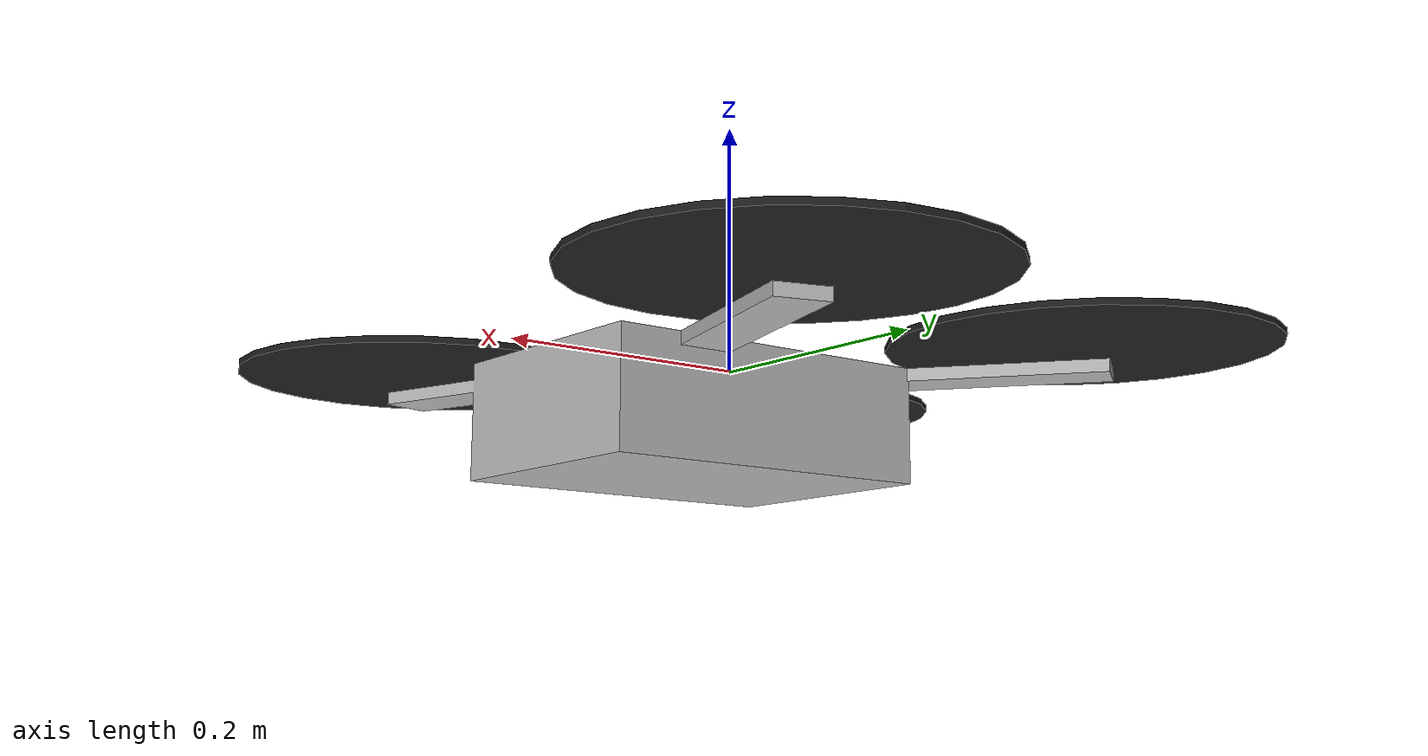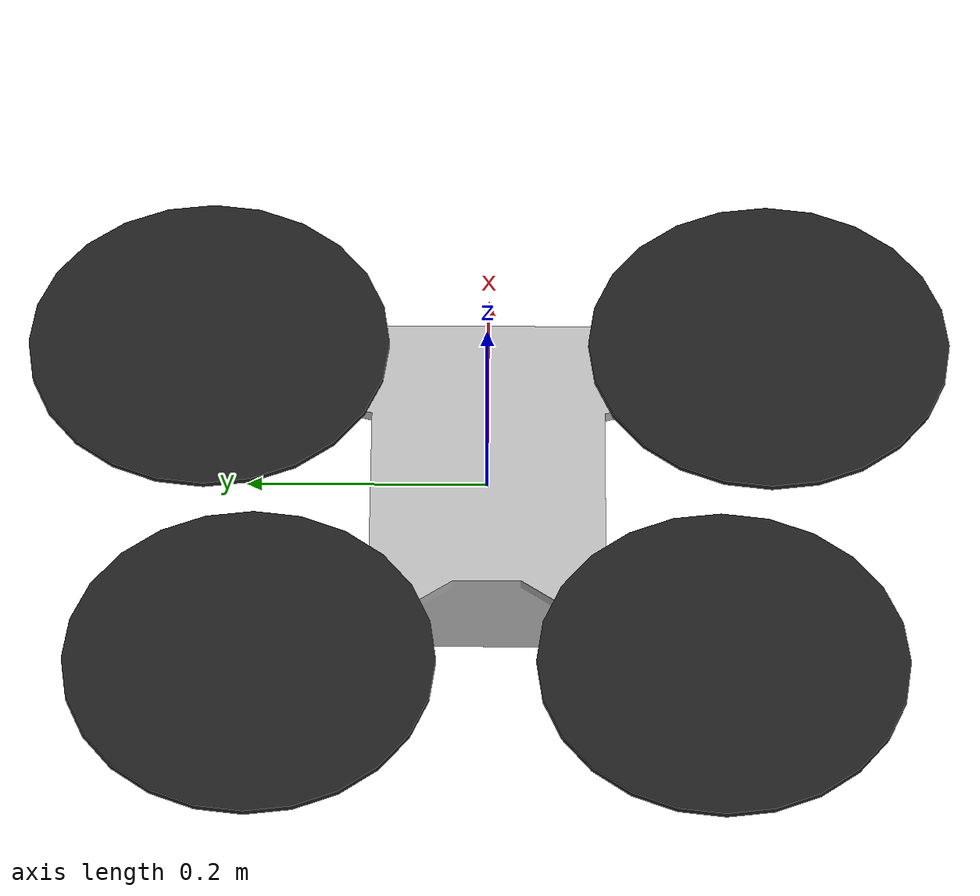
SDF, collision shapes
<?xml version='1.0' encoding='utf-8'?>
<sdf version='1.6'>
    <model name='shafter'>
        <link name='base_link'>
            <pose> 0.000 -0.000 -0.0 0 -0 0</pose>
            <inertial>
                <pose>0 0 0 0 -0 0</pose>
                <mass>3.06</mass>
                <inertia>
                    <ixx>0.026434293</ixx>
                    <ixy>0</ixy>
                    <ixz>0</ixz>
                    <iyy>0.022128819</iyy>
                    <iyz>0</iyz>
                    <izz>0.037886594</izz>
                </inertia>
            </inertial>
            <collision name='base_link_collision'>
                <pose>0 0 0 0 -0 0</pose>
                <geometry>
                    <mesh>
                        <scale>1 1 1</scale>
                        <uri>meshes/sh_base_link_geometry_v2.dae</uri>
                    </mesh>
                </geometry>
            </collision>
            <visual name='base_link_visual'>
                <pose>0 0 0 0 -0 0</pose>
                <geometry>
                    <mesh>
                        <scale>1 1 1</scale>
                        <uri>meshes/shafter_body_V2.dae</uri>
                    </mesh>
                </geometry>
            </visual>
             <visual name="front_led">
                <pose frame="">0.165 0.0 0.007 0 1.57079632679 0.0</pose>
                <geometry>
                    <mesh>
                        <scale>0.5 0.5 0.5</scale>
                        <uri>meshes/led.dae</uri>
                    </mesh>
                </geometry>
            </visual>
           <light name="front_left_flashlight_source" type="spot">
                <pose frame="">0.165 0.0 0.018 0 -1.57079632679 -0.0</pose>
                <attenuation>
                    <range>15</range>
                    <linear>0</linear>
                    <constant>0.1</constant>
                    <quadratic>0.0025</quadratic>
                </attenuation>
                <diffuse>0.8 0.8 0.5 1</diffuse>
                <specular>0.8 0.8 0.5 1</specular>
                <spot>
                    <inner_angle>1.5</inner_angle>
                    <outer_angle>1.8</outer_angle>
                    <falloff>1</falloff>
                </spot>
                <direction>0 0 -1</direction>
                <cast_shadows>1</cast_shadows>
            </light>
  	    <sensor name="imu_sensor" type="imu">
                <always_on>1</always_on>
                <update_rate>200</update_rate>
                <imu>
                    <enable_orientation>0</enable_orientation>
                    <angular_velocity>
                        <x>
                            <noise type="gaussian">
                                <mean>0</mean>
                                <stddev>0.009</stddev>
                                <bias_mean>0.00075</bias_mean>
                                <bias_stddev>0.005</bias_stddev>
                                <dynamic_bias_stddev>0.00002</dynamic_bias_stddev>
                                <dynamic_bias_correlation_time>400.0</dynamic_bias_correlation_time>
                                <precision>0.00025</precision>
                            </noise>
                        </x>
                        <y>
                            <noise type="gaussian">
                                <mean>0</mean>
                                <stddev>0.009</stddev>
                                <bias_mean>0.00075</bias_mean>
                                <bias_stddev>0.005</bias_stddev>
                                <dynamic_bias_stddev>0.00002</dynamic_bias_stddev>
                                <dynamic_bias_correlation_time>400.0</dynamic_bias_correlation_time>
                                <precision>0.00025</precision>
                            </noise>
                        </y>
                        <z>
                            <noise type="gaussian">
                                <mean>0</mean>
                                <stddev>0.009</stddev>
                                <bias_mean>0.00075</bias_mean>
                                <bias_stddev>0.005</bias_stddev>
                                <dynamic_bias_stddev>0.00002</dynamic_bias_stddev>
                                <dynamic_bias_correlation_time>400.0</dynamic_bias_correlation_time>
                                <precision>0.00025</precision>
                            </noise>
                        </z>
                    </angular_velocity>
                    <linear_acceleration>
                        <x>
                            <noise type="gaussian">
                                <mean>0</mean>
                                <stddev>0.021</stddev>
                                <bias_mean>0.05</bias_mean>
                                <bias_stddev>0.0075</bias_stddev>
                                <dynamic_bias_stddev>0.000375</dynamic_bias_stddev>
                                <dynamic_bias_correlation_time>175.0</dynamic_bias_correlation_time>
                                <precision>0.005</precision>
                            </noise>
                        </x>
                        <y>
                            <noise type="gaussian">
                                <mean>0</mean>
                                <stddev>0.021</stddev>
                                <bias_mean>0.05</bias_mean>
                                <bias_stddev>0.0075</bias_stddev>
                                <dynamic_bias_stddev>0.000375</dynamic_bias_stddev>
                                <dynamic_bias_correlation_time>175.0</dynamic_bias_correlation_time>
                                <precision>0.005</precision>
                            </noise>
                        </y>
                        <z>
                            <noise type="gaussian">
                                <mean>0</mean>
                                <stddev>0.021</stddev>
                                <bias_mean>0.05</bias_mean>
                                <bias_stddev>0.0075</bias_stddev>
                                <dynamic_bias_stddev>0.000375</dynamic_bias_stddev>
                                <dynamic_bias_correlation_time>175.0</dynamic_bias_correlation_time>
                                <precision>0.005</precision>
                            </noise>
                        </z>
                    </linear_acceleration>
                </imu>
	    </sensor>
	    <sensor name="air_pressure" type="air_pressure">
                <always_on>1</always_on>
                <update_rate>20</update_rate>
                <air_pressure>
                    <reference_altitude>0</reference_altitude>
                    <noise type="gaussian">
                        <mean>0.00000008</mean>
                    </noise>
                </air_pressure>
            </sensor>
            <sensor name="magnetometer" type="magnetometer">
                <always_on>1</always_on>
                <update_rate>20</update_rate>
                <magnetometer>
                    <x>
                        <noise type="gaussian">
                            <mean>0.000000080</mean>
                            <bias_mean>0.000000400</bias_mean>
                        </noise>
                    </x>
                    <y>
                        <noise type="gaussian">
                            <mean>0.000000080</mean>
                            <bias_mean>0.000000400</bias_mean>
                        </noise>
                    </y>
                    <z>
                        <noise type="gaussian">
                            <mean>0.000000080</mean>
                            <bias_mean>0.000000400</bias_mean>
                        </noise>
                    </z>
                </magnetometer>
            </sensor>

            <visual name="realsense_front_visual">
                <pose frame="">0.15 0.0 -0.003 -1.57079632679 0 -1.57079632679</pose>
                <geometry>
                    <mesh>
                        <uri>meshes/zr300.dae</uri>
                    </mesh>
                </geometry>
            </visual>

            <sensor name="realsense_front" type="rgbd_camera">
                <pose>0.16 0.0 -0.02 0 0 0</pose>
                <always_on>1</always_on>
                <update_rate>30</update_rate>
                <camera name="realsense_front">
                    <horizontal_fov>1.18682</horizontal_fov>
                    <lens>
                        <intrinsics>
                            <fx>355.815</fx>
                            <fy>355.815</fy>
                            <cx>240.5</cx>
                            <cy>180.5</cy>
                            <s>0</s>
                        </intrinsics>
                    </lens>
                    <distortion>
                        <k1>0.0</k1>
                        <k2>0.0</k2>
                        <k3>0.0</k3>
                        <p1>0.0</p1>
                        <p2>0.0</p2>
                    </distortion>
                    <image>
                        <width>480</width>
                        <height>360</height>
                        <format>R8G8B8</format>
                    </image>
                    <clip>
                        <near>0.01</near>
                        <far>300</far>
                    </clip>
                    <depth_camera>
                      <clip>
                        <near>0.55</near>
                        <far>2.8</far>
                      </clip>
                    </depth_camera>
                    <noise>
                        <type>gaussian</type>
                        <mean>0</mean>
                        <stddev>0.007</stddev>
                    </noise>
                </camera>
            </sensor>

            <visual name="laser_visual_base_1">
                <pose>0.01 0 0.0772 0 0 0</pose>
                <geometry>
                    <mesh>
            	        <scale>1 1 1</scale>
            	        <uri>meshes/VLP16_base_1.dae</uri>
             	    </mesh>
                </geometry>
            </visual>
 	    <visual name="laser_visual_base_2">
                <pose>0.01 0 0.0772 0 0 0</pose>
                <geometry>
                    <mesh>
            	        <scale>1 1 1</scale>
            	        <uri>meshes/VLP16_base_2.dae</uri>
          	    </mesh>
                </geometry>
            </visual>
            <visual name="laser_visual_scan">
                <pose>0.01 0 0.0772 0 0 0</pose>
                <geometry>
                    <mesh>
            	        <scale>1 1 1</scale>
            	        <uri>meshes/VLP16_scan.dae</uri>
          	    </mesh>
                </geometry>
            </visual>
            <sensor name="front_laser" type="gpu_ray">
                <pose>0 0 0.12 0 0 0</pose>
                <update_rate>10</update_rate>
                <lidar>
                    <scan>
                        <horizontal>
                            <samples>1800</samples>
                            <resolution>1.0</resolution>
                            <min_angle>-3.14159</min_angle>
                            <max_angle>3.14159</max_angle>
                        </horizontal>
                        <vertical>
                            <samples>16</samples>
                            <resolution>1</resolution>
                            <min_angle>-0.261799</min_angle>
                            <max_angle>0.261799</max_angle>
                        </vertical>
                    </scan>
                    <range>
                        <min>0.05</min>
                        <max>100</max>
                        <resolution>0.01</resolution>
                    </range>
                    <noise>
                        <type>gaussian</type>
                        <mean>0</mean>
                        <stddev>0.03</stddev>
                    </noise>
                </lidar>
            </sensor>
        </link>
        <link name='ShArm_1_link'>
            <pose>0.139618 -0.236291 0.014912 -0 0 0</pose>
            <inertial>
                <pose>0 0 0 0 -0 0</pose>
                <mass>0.015</mass>
                <inertia>
                    <ixx>5.41e-07</ixx>
                    <ixy>0</ixy>
                    <ixz>0</ixz>
                    <iyy>0.000090882</iyy>
                    <iyz>0</iyz>
                    <izz>0.000091336</izz>
                </inertia>
      	    </inertial>
           <collision name="rotor_0_collision">
                <pose frame="">0 0 0 0 -0 0</pose>
                <geometry>
                    <cylinder>
                        <length>0.005</length>
                        <radius>0.1524</radius>
                    </cylinder>
                </geometry>
                <surface>
                    <contact>
                        <ode/>
                    </contact>
                    <friction>
                        <ode/>
                    </friction>
                </surface>
            </collision>
      	    <visual name='ShArm_1_link_visual'>
                <pose>0 0 0 0 -0 0</pose>
                <geometry>
          	    <mesh>
                        <scale>1 1 1</scale>
                        <uri>meshes/shafter_rotor_ccw_V2.dae</uri>
                    </mesh>
        	</geometry>
                <material>
                    <diffuse>0 0 0 1</diffuse>
                    <script>
                        <name>Gazebo/Black</name>
                        <uri>file://media/materials/scripts/gazebo.material</uri>
                    </script>
                </material>
                <cast_shadows>0</cast_shadows>
            </visual>
            <gravity>1</gravity>
            <velocity_decay/>
        </link>
        <joint name='ShBody_1_ShArm_1_joint' type='revolute'>
            <child>ShArm_1_link</child>
            <parent>base_link</parent>
            <axis>
                <xyz>0 0 1</xyz>
                <limit>
                    <lower>-1e+16</lower>
                    <upper>1e+16</upper>
                </limit>
                <dynamics>
                    <spring_reference>0</spring_reference>
                    <spring_stiffness>0</spring_stiffness>
        	</dynamics>
        	<use_parent_model_frame>1</use_parent_model_frame>
      	    </axis>
        </joint>
        <link name='ShArm_2_link'>
            <pose>-0.194827 -0.193358 0.014912 -0 0 0</pose>
            <inertial>
                <pose>0 0 0 0 -0 0</pose>
                <mass>0.015</mass>
                <inertia>
                    <ixx>5.41e-07</ixx>
                    <ixy>0</ixy>
                    <ixz>0</ixz>
                    <iyy>0.000090882</iyy>
                    <iyz>0</iyz>
                    <izz>0.000091336</izz>
                </inertia>
            </inertial>
           <collision name="rotor_0_collision">
                <pose frame="">0 0 0 0 -0 0</pose>
                <geometry>
                    <cylinder>
                        <length>0.005</length>
                        <radius>0.1524</radius>
                    </cylinder>
                </geometry>
                <surface>
                    <contact>
                        <ode/>
                    </contact>
                    <friction>
                        <ode/>
                    </friction>
                </surface>
            </collision>
      	    <visual name='ShArm_2_link_visual'>
                <pose>0 0 0 0 -0 0</pose>
        	<geometry>
          	    <mesh>
                        <scale>1 1 1</scale>
                        <uri>meshes/shafter_rotor_cw_V2.dae</uri>
                    </mesh>
        	</geometry>
   		<material>
                    <diffuse>0 0 0 1</diffuse>
                    <script>
                        <name>Gazebo/Black</name>
                        <uri>file://media/materials/scripts/gazebo.material</uri>
                    </script>
                </material>
                <cast_shadows>0</cast_shadows>
      	    </visual>
	    <gravity>1</gravity>
            <velocity_decay/>
        </link>
        <joint name='ShBody_1_ShArm_2_joint' type='revolute'>
            <child>ShArm_2_link</child>
            <parent>base_link</parent>
      	    <axis>
                <xyz>0 0 1</xyz>
        	<limit>
         	    <lower>-1e+16</lower>
                    <upper>1e+16</upper>
        	</limit>
        	<dynamics>
          	    <spring_reference>0</spring_reference>
            	    <spring_stiffness>0</spring_stiffness>
        	</dynamics>
        	<use_parent_model_frame>1</use_parent_model_frame>
      	    </axis>
        </joint>
        <link name='ShArm_3_link'>
            <pose>-0.194827 0.193358 0.014912 -0 0 0</pose>
            <inertial>
                <pose>0 0 0 0 -0 0</pose>
                <mass>0.015</mass>
                <inertia>
                    <ixx>5.41e-07</ixx>
                    <ixy>0</ixy>
                    <ixz>0</ixz>
                    <iyy>0.000090882</iyy>
                    <iyz>0</iyz>
                    <izz>0.000091336</izz>
                </inertia>
      	    </inertial>
      	    <collision name="rotor_0_collision">
                <pose frame="">0 0 0 0 -0 0</pose>
                <geometry>
                    <cylinder>
                        <length>0.005</length>
                        <radius>0.1524</radius>
                    </cylinder>
                </geometry>
                <surface>
                    <contact>
                        <ode/>
                    </contact>
                    <friction>
                        <ode/>
                    </friction>
                </surface>
            </collision>
      	    <visual name='ShArm_3_link_visual'>
                <pose>0 0 0 0 -0 0</pose>
        	<geometry>
          	    <mesh>
                        <scale>1 1 1</scale>
                        <uri>meshes/shafter_rotor_ccw_V2.dae</uri>
                    </mesh>
        	</geometry>
   		<material>
                    <diffuse>0 0 0 1</diffuse>
                    <script>
                        <name>Gazebo/Black</name>
                        <uri>file://media/materials/scripts/gazebo.material</uri>
                    </script>
                </material>
                <cast_shadows>0</cast_shadows>
      	    </visual>
	    <gravity>1</gravity>
            <velocity_decay/>
        </link>
        <joint name='ShBody_1_ShArm_3_joint' type='revolute'>
            <child>ShArm_3_link</child>
            <parent>base_link</parent>
      	    <axis>
                <xyz>0 0 1</xyz>
        	<limit>
          	    <lower>-1e+16</lower>
                    <upper>1e+16</upper>
        	</limit>
        	<dynamics>
          	    <spring_reference>0</spring_reference>
          	    <spring_stiffness>0</spring_stiffness>
        	</dynamics>
        	<use_parent_model_frame>1</use_parent_model_frame>
            </axis>
        </joint>
    	<link name='ShArm_4_link'>
            <pose>0.139618 0.236291 0.014912 -0 0 0</pose>
      	    <inertial>
                <pose>0 0 0 0 -0 0</pose>
                <mass>0.015</mass>
                <inertia>
                    <ixx>5.41e-07</ixx>
                    <ixy>0</ixy>
                    <ixz>0</ixz>
                    <iyy>0.000090882</iyy>
                    <iyz>0</iyz>
                    <izz>0.000091336</izz>
                </inertia>
      	    </inertial>
      	    <collision name="rotor_0_collision">
                <pose frame="">0 0 0 0 -0 0</pose>
                <geometry>
                    <cylinder>
                        <length>0.005</length>
                        <radius>0.1524</radius>
                    </cylinder>
                </geometry>
                <surface>
                    <contact>
                        <ode/>
                    </contact>
                    <friction>
                        <ode/>
                    </friction>
                </surface>
            </collision>
      	    <visual name='ShArm_4_link_visual'>
                <pose>0 0 0 0 -0 0</pose>
        	<geometry>
          	    <mesh>
                        <scale>1 1 1</scale>
                        <uri>meshes/shafter_rotor_cw_V2.dae</uri>
                    </mesh>
        	</geometry>
   		<material>
                    <diffuse>0 0 0 1</diffuse>
                    <script>
                        <name>Gazebo/Black</name>
                        <uri>file://media/materials/scripts/gazebo.material</uri>
                    </script>
                </material>
                <cast_shadows>0</cast_shadows>
      	    </visual>
	    <gravity>1</gravity>
            <velocity_decay/>
        </link>
        <joint name='ShBody_1_ShArm_4_joint' type='revolute'>
            <child>ShArm_4_link</child>
      	    <parent>base_link</parent>
      	    <axis>
                <xyz>0 0 1</xyz>
        	<limit>
          	    <lower>-1e+16</lower>
          	    <upper>1e+16</upper>
        	</limit>
        	<dynamics>
          	    <spring_reference>0</spring_reference>
          	    <spring_stiffness>0</spring_stiffness>
        	</dynamics>
        	<use_parent_model_frame>1</use_parent_model_frame>
      	    </axis>
        </joint>
    </model>
</sdf>
